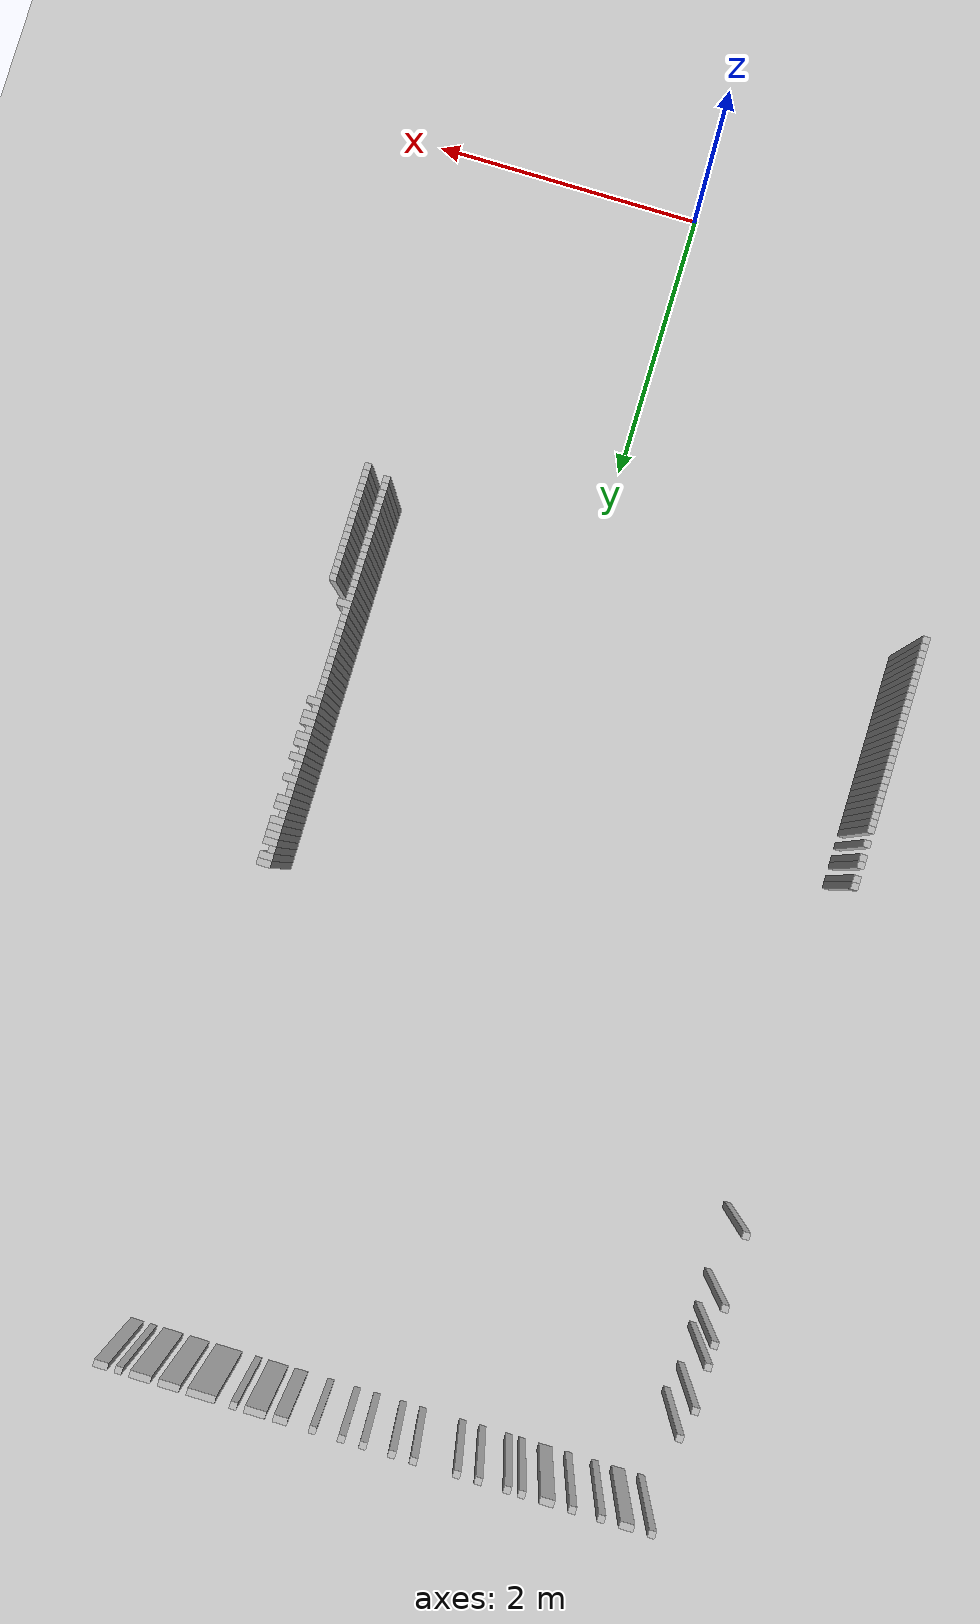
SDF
<sdf version="1.6">
 <world name="udh1_world">
  <include><uri>model://ground_plane</uri></include>
  <include><uri>model://sun</uri></include>
  <model name="wall_10">
   <static>true</static>
   <pose>-2.244999999999999 9.020000000000001 0.5 0 0 0</pose>
   <link name="link">
    <collision name="col"><geometry><box><size>0.05 0.05 1</size></box></geometry></collision>
    <visual name="vis"><geometry><box><size>0.05 0.05 1</size></box></geometry></visual>
   </link>
  </model>
  <model name="wall_11">
   <static>true</static>
   <pose>-2.0699999999999994 9.020000000000001 0.5 0 0 0</pose>
   <link name="link">
    <collision name="col"><geometry><box><size>0.1 0.05 1</size></box></geometry></collision>
    <visual name="vis"><geometry><box><size>0.1 0.05 1</size></box></geometry></visual>
   </link>
  </model>
  <model name="wall_12">
   <static>true</static>
   <pose>-1.8949999999999996 9.020000000000001 0.5 0 0 0</pose>
   <link name="link">
    <collision name="col"><geometry><box><size>0.05 0.05 1</size></box></geometry></collision>
    <visual name="vis"><geometry><box><size>0.05 0.05 1</size></box></geometry></visual>
   </link>
  </model>
  <model name="wall_13">
   <static>true</static>
   <pose>-1.6949999999999994 9.020000000000001 0.5 0 0 0</pose>
   <link name="link">
    <collision name="col"><geometry><box><size>0.05 0.05 1</size></box></geometry></collision>
    <visual name="vis"><geometry><box><size>0.05 0.05 1</size></box></geometry></visual>
   </link>
  </model>
  <model name="wall_14">
   <static>true</static>
   <pose>-1.5199999999999996 9.020000000000001 0.5 0 0 0</pose>
   <link name="link">
    <collision name="col"><geometry><box><size>0.1 0.05 1</size></box></geometry></collision>
    <visual name="vis"><geometry><box><size>0.1 0.05 1</size></box></geometry></visual>
   </link>
  </model>
  <model name="wall_15">
   <static>true</static>
   <pose>-1.3449999999999989 9.020000000000001 0.5 0 0 0</pose>
   <link name="link">
    <collision name="col"><geometry><box><size>0.05 0.05 1</size></box></geometry></collision>
    <visual name="vis"><geometry><box><size>0.05 0.05 1</size></box></geometry></visual>
   </link>
  </model>
  <model name="wall_16">
   <static>true</static>
   <pose>-1.2449999999999992 9.020000000000001 0.5 0 0 0</pose>
   <link name="link">
    <collision name="col"><geometry><box><size>0.05 0.05 1</size></box></geometry></collision>
    <visual name="vis"><geometry><box><size>0.05 0.05 1</size></box></geometry></visual>
   </link>
  </model>
  <model name="wall_17">
   <static>true</static>
   <pose>-1.044999999999999 9.020000000000001 0.5 0 0 0</pose>
   <link name="link">
    <collision name="col"><geometry><box><size>0.05 0.05 1</size></box></geometry></collision>
    <visual name="vis"><geometry><box><size>0.05 0.05 1</size></box></geometry></visual>
   </link>
  </model>
  <model name="wall_18">
   <static>true</static>
   <pose>-0.8949999999999996 9.020000000000001 0.5 0 0 0</pose>
   <link name="link">
    <collision name="col"><geometry><box><size>0.05 0.05 1</size></box></geometry></collision>
    <visual name="vis"><geometry><box><size>0.05 0.05 1</size></box></geometry></visual>
   </link>
  </model>
  <model name="wall_19">
   <static>true</static>
   <pose>-0.5949999999999989 9.020000000000001 0.5 0 0 0</pose>
   <link name="link">
    <collision name="col"><geometry><box><size>0.05 0.05 1</size></box></geometry></collision>
    <visual name="vis"><geometry><box><size>0.05 0.05 1</size></box></geometry></visual>
   </link>
  </model>
  <model name="wall_20">
   <static>true</static>
   <pose>-0.4449999999999985 9.020000000000001 0.5 0 0 0</pose>
   <link name="link">
    <collision name="col"><geometry><box><size>0.05 0.05 1</size></box></geometry></collision>
    <visual name="vis"><geometry><box><size>0.05 0.05 1</size></box></geometry></visual>
   </link>
  </model>
  <model name="wall_21">
   <static>true</static>
   <pose>-0.24499999999999922 9.020000000000001 0.5 0 0 0</pose>
   <link name="link">
    <collision name="col"><geometry><box><size>0.05 0.05 1</size></box></geometry></collision>
    <visual name="vis"><geometry><box><size>0.05 0.05 1</size></box></geometry></visual>
   </link>
  </model>
  <model name="wall_22">
   <static>true</static>
   <pose>-0.09499999999999886 9.020000000000001 0.5 0 0 0</pose>
   <link name="link">
    <collision name="col"><geometry><box><size>0.05 0.05 1</size></box></geometry></collision>
    <visual name="vis"><geometry><box><size>0.05 0.05 1</size></box></geometry></visual>
   </link>
  </model>
  <model name="wall_23">
   <static>true</static>
   <pose>0.10500000000000043 9.020000000000001 0.5 0 0 0</pose>
   <link name="link">
    <collision name="col"><geometry><box><size>0.05 0.05 1</size></box></geometry></collision>
    <visual name="vis"><geometry><box><size>0.05 0.05 1</size></box></geometry></visual>
   </link>
  </model>
  <model name="wall_24">
   <static>true</static>
   <pose>0.33000000000000007 9.020000000000001 0.5 0 0 0</pose>
   <link name="link">
    <collision name="col"><geometry><box><size>0.1 0.05 1</size></box></geometry></collision>
    <visual name="vis"><geometry><box><size>0.1 0.05 1</size></box></geometry></visual>
   </link>
  </model>
  <model name="wall_25">
   <static>true</static>
   <pose>0.5050000000000008 9.020000000000001 0.5 0 0 0</pose>
   <link name="link">
    <collision name="col"><geometry><box><size>0.15000000000000002 0.05 1</size></box></geometry></collision>
    <visual name="vis"><geometry><box><size>0.15000000000000002 0.05 1</size></box></geometry></visual>
   </link>
  </model>
  <model name="wall_26">
   <static>true</static>
   <pose>0.6550000000000011 9.020000000000001 0.5 0 0 0</pose>
   <link name="link">
    <collision name="col"><geometry><box><size>0.05 0.05 1</size></box></geometry></collision>
    <visual name="vis"><geometry><box><size>0.05 0.05 1</size></box></geometry></visual>
   </link>
  </model>
  <model name="wall_27">
   <static>true</static>
   <pose>0.8800000000000008 9.020000000000001 0.5 0 0 0</pose>
   <link name="link">
    <collision name="col"><geometry><box><size>0.2 0.05 1</size></box></geometry></collision>
    <visual name="vis"><geometry><box><size>0.2 0.05 1</size></box></geometry></visual>
   </link>
  </model>
  <model name="wall_28">
   <static>true</static>
   <pose>1.1050000000000004 9.020000000000001 0.5 0 0 0</pose>
   <link name="link">
    <collision name="col"><geometry><box><size>0.15000000000000002 0.05 1</size></box></geometry></collision>
    <visual name="vis"><geometry><box><size>0.15000000000000002 0.05 1</size></box></geometry></visual>
   </link>
  </model>
  <model name="wall_29">
   <static>true</static>
   <pose>1.3050000000000015 9.020000000000001 0.5 0 0 0</pose>
   <link name="link">
    <collision name="col"><geometry><box><size>0.15000000000000002 0.05 1</size></box></geometry></collision>
    <visual name="vis"><geometry><box><size>0.15000000000000002 0.05 1</size></box></geometry></visual>
   </link>
  </model>
  <model name="wall_30">
   <static>true</static>
   <pose>1.4550000000000018 9.020000000000001 0.5 0 0 0</pose>
   <link name="link">
    <collision name="col"><geometry><box><size>0.05 0.05 1</size></box></geometry></collision>
    <visual name="vis"><geometry><box><size>0.05 0.05 1</size></box></geometry></visual>
   </link>
  </model>
  <model name="wall_31">
   <static>true</static>
   <pose>1.5800000000000018 9.020000000000001 0.5 0 0 0</pose>
   <link name="link">
    <collision name="col"><geometry><box><size>0.1 0.05 1</size></box></geometry></collision>
    <visual name="vis"><geometry><box><size>0.1 0.05 1</size></box></geometry></visual>
   </link>
  </model>
  <model name="wall_93">
   <static>true</static>
   <pose>-2.244999999999999 8.37 0.5 0 0 0</pose>
   <link name="link">
    <collision name="col"><geometry><box><size>0.05 0.05 1</size></box></geometry></collision>
    <visual name="vis"><geometry><box><size>0.05 0.05 1</size></box></geometry></visual>
   </link>
  </model>
  <model name="wall_110">
   <static>true</static>
   <pose>-2.294999999999999 8.17 0.5 0 0 0</pose>
   <link name="link">
    <collision name="col"><geometry><box><size>0.05 0.05 1</size></box></geometry></collision>
    <visual name="vis"><geometry><box><size>0.05 0.05 1</size></box></geometry></visual>
   </link>
  </model>
  <model name="wall_135">
   <static>true</static>
   <pose>-2.294999999999999 7.869999999999999 0.5 0 0 0</pose>
   <link name="link">
    <collision name="col"><geometry><box><size>0.05 0.05 1</size></box></geometry></collision>
    <visual name="vis"><geometry><box><size>0.05 0.05 1</size></box></geometry></visual>
   </link>
  </model>
  <model name="wall_148">
   <static>true</static>
   <pose>-2.294999999999999 7.720000000000001 0.5 0 0 0</pose>
   <link name="link">
    <collision name="col"><geometry><box><size>0.05 0.05 1</size></box></geometry></collision>
    <visual name="vis"><geometry><box><size>0.05 0.05 1</size></box></geometry></visual>
   </link>
  </model>
  <model name="wall_169">
   <static>true</static>
   <pose>-2.294999999999999 7.470000000000001 0.5 0 0 0</pose>
   <link name="link">
    <collision name="col"><geometry><box><size>0.05 0.05 1</size></box></geometry></collision>
    <visual name="vis"><geometry><box><size>0.05 0.05 1</size></box></geometry></visual>
   </link>
  </model>
  <model name="wall_220">
   <static>true</static>
   <pose>-2.294999999999999 6.970000000000001 0.5 0 0 0</pose>
   <link name="link">
    <collision name="col"><geometry><box><size>0.05 0.05 1</size></box></geometry></collision>
    <visual name="vis"><geometry><box><size>0.05 0.05 1</size></box></geometry></visual>
   </link>
  </model>
  <model name="wall_425">
   <static>true</static>
   <pose>1.5300000000000011 5.52 0.5 0 0 0</pose>
   <link name="link">
    <collision name="col"><geometry><box><size>0.1 0.05 1</size></box></geometry></collision>
    <visual name="vis"><geometry><box><size>0.1 0.05 1</size></box></geometry></visual>
   </link>
  </model>
  <model name="wall_434">
   <static>true</static>
   <pose>1.5300000000000011 5.470000000000001 0.5 0 0 0</pose>
   <link name="link">
    <collision name="col"><geometry><box><size>0.1 0.05 1</size></box></geometry></collision>
    <visual name="vis"><geometry><box><size>0.1 0.05 1</size></box></geometry></visual>
   </link>
  </model>
  <model name="wall_443">
   <static>true</static>
   <pose>1.5050000000000008 5.42 0.5 0 0 0</pose>
   <link name="link">
    <collision name="col"><geometry><box><size>0.05 0.05 1</size></box></geometry></collision>
    <visual name="vis"><geometry><box><size>0.05 0.05 1</size></box></geometry></visual>
   </link>
  </model>
  <model name="wall_452">
   <static>true</static>
   <pose>1.5300000000000011 5.369999999999999 0.5 0 0 0</pose>
   <link name="link">
    <collision name="col"><geometry><box><size>0.1 0.05 1</size></box></geometry></collision>
    <visual name="vis"><geometry><box><size>0.1 0.05 1</size></box></geometry></visual>
   </link>
  </model>
  <model name="wall_461">
   <static>true</static>
   <pose>1.5300000000000011 5.32 0.5 0 0 0</pose>
   <link name="link">
    <collision name="col"><geometry><box><size>0.1 0.05 1</size></box></geometry></collision>
    <visual name="vis"><geometry><box><size>0.1 0.05 1</size></box></geometry></visual>
   </link>
  </model>
  <model name="wall_470">
   <static>true</static>
   <pose>1.5300000000000011 5.27 0.5 0 0 0</pose>
   <link name="link">
    <collision name="col"><geometry><box><size>0.1 0.05 1</size></box></geometry></collision>
    <visual name="vis"><geometry><box><size>0.1 0.05 1</size></box></geometry></visual>
   </link>
  </model>
  <model name="wall_479">
   <static>true</static>
   <pose>1.5300000000000011 5.220000000000001 0.5 0 0 0</pose>
   <link name="link">
    <collision name="col"><geometry><box><size>0.1 0.05 1</size></box></geometry></collision>
    <visual name="vis"><geometry><box><size>0.1 0.05 1</size></box></geometry></visual>
   </link>
  </model>
  <model name="wall_488">
   <static>true</static>
   <pose>1.5050000000000008 5.17 0.5 0 0 0</pose>
   <link name="link">
    <collision name="col"><geometry><box><size>0.05 0.05 1</size></box></geometry></collision>
    <visual name="vis"><geometry><box><size>0.05 0.05 1</size></box></geometry></visual>
   </link>
  </model>
  <model name="wall_497">
   <static>true</static>
   <pose>1.5300000000000011 5.119999999999999 0.5 0 0 0</pose>
   <link name="link">
    <collision name="col"><geometry><box><size>0.1 0.05 1</size></box></geometry></collision>
    <visual name="vis"><geometry><box><size>0.1 0.05 1</size></box></geometry></visual>
   </link>
  </model>
  <model name="wall_506">
   <static>true</static>
   <pose>1.5300000000000011 5.07 0.5 0 0 0</pose>
   <link name="link">
    <collision name="col"><geometry><box><size>0.1 0.05 1</size></box></geometry></collision>
    <visual name="vis"><geometry><box><size>0.1 0.05 1</size></box></geometry></visual>
   </link>
  </model>
  <model name="wall_515">
   <static>true</static>
   <pose>1.5050000000000008 5.02 0.5 0 0 0</pose>
   <link name="link">
    <collision name="col"><geometry><box><size>0.05 0.05 1</size></box></geometry></collision>
    <visual name="vis"><geometry><box><size>0.05 0.05 1</size></box></geometry></visual>
   </link>
  </model>
  <model name="wall_524">
   <static>true</static>
   <pose>1.5050000000000008 4.970000000000001 0.5 0 0 0</pose>
   <link name="link">
    <collision name="col"><geometry><box><size>0.05 0.05 1</size></box></geometry></collision>
    <visual name="vis"><geometry><box><size>0.05 0.05 1</size></box></geometry></visual>
   </link>
  </model>
  <model name="wall_533">
   <static>true</static>
   <pose>1.5300000000000011 4.92 0.5 0 0 0</pose>
   <link name="link">
    <collision name="col"><geometry><box><size>0.1 0.05 1</size></box></geometry></collision>
    <visual name="vis"><geometry><box><size>0.1 0.05 1</size></box></geometry></visual>
   </link>
  </model>
  <model name="wall_542">
   <static>true</static>
   <pose>1.5050000000000008 4.869999999999999 0.5 0 0 0</pose>
   <link name="link">
    <collision name="col"><geometry><box><size>0.05 0.05 1</size></box></geometry></collision>
    <visual name="vis"><geometry><box><size>0.05 0.05 1</size></box></geometry></visual>
   </link>
  </model>
  <model name="wall_551">
   <static>true</static>
   <pose>1.5050000000000008 4.82 0.5 0 0 0</pose>
   <link name="link">
    <collision name="col"><geometry><box><size>0.05 0.05 1</size></box></geometry></collision>
    <visual name="vis"><geometry><box><size>0.05 0.05 1</size></box></geometry></visual>
   </link>
  </model>
  <model name="wall_559">
   <static>true</static>
   <pose>1.5300000000000011 4.77 0.5 0 0 0</pose>
   <link name="link">
    <collision name="col"><geometry><box><size>0.1 0.05 1</size></box></geometry></collision>
    <visual name="vis"><geometry><box><size>0.1 0.05 1</size></box></geometry></visual>
   </link>
  </model>
  <model name="wall_568">
   <static>true</static>
   <pose>1.5050000000000008 4.720000000000001 0.5 0 0 0</pose>
   <link name="link">
    <collision name="col"><geometry><box><size>0.05 0.05 1</size></box></geometry></collision>
    <visual name="vis"><geometry><box><size>0.05 0.05 1</size></box></geometry></visual>
   </link>
  </model>
  <model name="wall_578">
   <static>true</static>
   <pose>1.5300000000000011 4.67 0.5 0 0 0</pose>
   <link name="link">
    <collision name="col"><geometry><box><size>0.1 0.05 1</size></box></geometry></collision>
    <visual name="vis"><geometry><box><size>0.1 0.05 1</size></box></geometry></visual>
   </link>
  </model>
  <model name="wall_591">
   <static>true</static>
   <pose>1.5300000000000011 4.619999999999999 0.5 0 0 0</pose>
   <link name="link">
    <collision name="col"><geometry><box><size>0.1 0.05 1</size></box></geometry></collision>
    <visual name="vis"><geometry><box><size>0.1 0.05 1</size></box></geometry></visual>
   </link>
  </model>
  <model name="wall_602">
   <static>true</static>
   <pose>1.5050000000000008 4.57 0.5 0 0 0</pose>
   <link name="link">
    <collision name="col"><geometry><box><size>0.05 0.05 1</size></box></geometry></collision>
    <visual name="vis"><geometry><box><size>0.05 0.05 1</size></box></geometry></visual>
   </link>
  </model>
  <model name="wall_615">
   <static>true</static>
   <pose>-2.344999999999999 4.52 0.5 0 0 0</pose>
   <link name="link">
    <collision name="col"><geometry><box><size>0.05 0.05 1</size></box></geometry></collision>
    <visual name="vis"><geometry><box><size>0.05 0.05 1</size></box></geometry></visual>
   </link>
  </model>
  <model name="wall_616">
   <static>true</static>
   <pose>1.5300000000000011 4.52 0.5 0 0 0</pose>
   <link name="link">
    <collision name="col"><geometry><box><size>0.1 0.05 1</size></box></geometry></collision>
    <visual name="vis"><geometry><box><size>0.1 0.05 1</size></box></geometry></visual>
   </link>
  </model>
  <model name="wall_625">
   <static>true</static>
   <pose>-2.344999999999999 4.470000000000001 0.5 0 0 0</pose>
   <link name="link">
    <collision name="col"><geometry><box><size>0.05 0.05 1</size></box></geometry></collision>
    <visual name="vis"><geometry><box><size>0.05 0.05 1</size></box></geometry></visual>
   </link>
  </model>
  <model name="wall_626">
   <static>true</static>
   <pose>1.5300000000000011 4.470000000000001 0.5 0 0 0</pose>
   <link name="link">
    <collision name="col"><geometry><box><size>0.1 0.05 1</size></box></geometry></collision>
    <visual name="vis"><geometry><box><size>0.1 0.05 1</size></box></geometry></visual>
   </link>
  </model>
  <model name="wall_635">
   <static>true</static>
   <pose>1.5050000000000008 4.42 0.5 0 0 0</pose>
   <link name="link">
    <collision name="col"><geometry><box><size>0.05 0.05 1</size></box></geometry></collision>
    <visual name="vis"><geometry><box><size>0.05 0.05 1</size></box></geometry></visual>
   </link>
  </model>
  <model name="wall_644">
   <static>true</static>
   <pose>-2.344999999999999 4.369999999999999 0.5 0 0 0</pose>
   <link name="link">
    <collision name="col"><geometry><box><size>0.05 0.05 1</size></box></geometry></collision>
    <visual name="vis"><geometry><box><size>0.05 0.05 1</size></box></geometry></visual>
   </link>
  </model>
  <model name="wall_645">
   <static>true</static>
   <pose>1.5300000000000011 4.369999999999999 0.5 0 0 0</pose>
   <link name="link">
    <collision name="col"><geometry><box><size>0.1 0.05 1</size></box></geometry></collision>
    <visual name="vis"><geometry><box><size>0.1 0.05 1</size></box></geometry></visual>
   </link>
  </model>
  <model name="wall_654">
   <static>true</static>
   <pose>-2.344999999999999 4.32 0.5 0 0 0</pose>
   <link name="link">
    <collision name="col"><geometry><box><size>0.05 0.05 1</size></box></geometry></collision>
    <visual name="vis"><geometry><box><size>0.05 0.05 1</size></box></geometry></visual>
   </link>
  </model>
  <model name="wall_655">
   <static>true</static>
   <pose>1.5050000000000008 4.32 0.5 0 0 0</pose>
   <link name="link">
    <collision name="col"><geometry><box><size>0.05 0.05 1</size></box></geometry></collision>
    <visual name="vis"><geometry><box><size>0.05 0.05 1</size></box></geometry></visual>
   </link>
  </model>
  <model name="wall_664">
   <static>true</static>
   <pose>1.5050000000000008 4.27 0.5 0 0 0</pose>
   <link name="link">
    <collision name="col"><geometry><box><size>0.05 0.05 1</size></box></geometry></collision>
    <visual name="vis"><geometry><box><size>0.05 0.05 1</size></box></geometry></visual>
   </link>
  </model>
  <model name="wall_673">
   <static>true</static>
   <pose>-2.344999999999999 4.220000000000001 0.5 0 0 0</pose>
   <link name="link">
    <collision name="col"><geometry><box><size>0.05 0.05 1</size></box></geometry></collision>
    <visual name="vis"><geometry><box><size>0.05 0.05 1</size></box></geometry></visual>
   </link>
  </model>
  <model name="wall_674">
   <static>true</static>
   <pose>1.5050000000000008 4.220000000000001 0.5 0 0 0</pose>
   <link name="link">
    <collision name="col"><geometry><box><size>0.05 0.05 1</size></box></geometry></collision>
    <visual name="vis"><geometry><box><size>0.05 0.05 1</size></box></geometry></visual>
   </link>
  </model>
  <model name="wall_683">
   <static>true</static>
   <pose>1.5050000000000008 4.17 0.5 0 0 0</pose>
   <link name="link">
    <collision name="col"><geometry><box><size>0.05 0.05 1</size></box></geometry></collision>
    <visual name="vis"><geometry><box><size>0.05 0.05 1</size></box></geometry></visual>
   </link>
  </model>
  <model name="wall_692">
   <static>true</static>
   <pose>-2.344999999999999 4.119999999999999 0.5 0 0 0</pose>
   <link name="link">
    <collision name="col"><geometry><box><size>0.05 0.05 1</size></box></geometry></collision>
    <visual name="vis"><geometry><box><size>0.05 0.05 1</size></box></geometry></visual>
   </link>
  </model>
  <model name="wall_693">
   <static>true</static>
   <pose>1.5050000000000008 4.119999999999999 0.5 0 0 0</pose>
   <link name="link">
    <collision name="col"><geometry><box><size>0.05 0.05 1</size></box></geometry></collision>
    <visual name="vis"><geometry><box><size>0.05 0.05 1</size></box></geometry></visual>
   </link>
  </model>
  <model name="wall_702">
   <static>true</static>
   <pose>-2.344999999999999 4.07 0.5 0 0 0</pose>
   <link name="link">
    <collision name="col"><geometry><box><size>0.05 0.05 1</size></box></geometry></collision>
    <visual name="vis"><geometry><box><size>0.05 0.05 1</size></box></geometry></visual>
   </link>
  </model>
  <model name="wall_703">
   <static>true</static>
   <pose>1.5050000000000008 4.07 0.5 0 0 0</pose>
   <link name="link">
    <collision name="col"><geometry><box><size>0.05 0.05 1</size></box></geometry></collision>
    <visual name="vis"><geometry><box><size>0.05 0.05 1</size></box></geometry></visual>
   </link>
  </model>
  <model name="wall_712">
   <static>true</static>
   <pose>-2.344999999999999 4.02 0.5 0 0 0</pose>
   <link name="link">
    <collision name="col"><geometry><box><size>0.05 0.05 1</size></box></geometry></collision>
    <visual name="vis"><geometry><box><size>0.05 0.05 1</size></box></geometry></visual>
   </link>
  </model>
  <model name="wall_713">
   <static>true</static>
   <pose>1.5050000000000008 4.02 0.5 0 0 0</pose>
   <link name="link">
    <collision name="col"><geometry><box><size>0.05 0.05 1</size></box></geometry></collision>
    <visual name="vis"><geometry><box><size>0.05 0.05 1</size></box></geometry></visual>
   </link>
  </model>
  <model name="wall_722">
   <static>true</static>
   <pose>-2.344999999999999 3.9700000000000006 0.5 0 0 0</pose>
   <link name="link">
    <collision name="col"><geometry><box><size>0.05 0.05 1</size></box></geometry></collision>
    <visual name="vis"><geometry><box><size>0.05 0.05 1</size></box></geometry></visual>
   </link>
  </model>
  <model name="wall_723">
   <static>true</static>
   <pose>1.5050000000000008 3.9700000000000006 0.5 0 0 0</pose>
   <link name="link">
    <collision name="col"><geometry><box><size>0.05 0.05 1</size></box></geometry></collision>
    <visual name="vis"><geometry><box><size>0.05 0.05 1</size></box></geometry></visual>
   </link>
  </model>
  <model name="wall_732">
   <static>true</static>
   <pose>-2.344999999999999 3.92 0.5 0 0 0</pose>
   <link name="link">
    <collision name="col"><geometry><box><size>0.05 0.05 1</size></box></geometry></collision>
    <visual name="vis"><geometry><box><size>0.05 0.05 1</size></box></geometry></visual>
   </link>
  </model>
  <model name="wall_733">
   <static>true</static>
   <pose>1.5050000000000008 3.92 0.5 0 0 0</pose>
   <link name="link">
    <collision name="col"><geometry><box><size>0.05 0.05 1</size></box></geometry></collision>
    <visual name="vis"><geometry><box><size>0.05 0.05 1</size></box></geometry></visual>
   </link>
  </model>
  <model name="wall_742">
   <static>true</static>
   <pose>-2.344999999999999 3.869999999999999 0.5 0 0 0</pose>
   <link name="link">
    <collision name="col"><geometry><box><size>0.05 0.05 1</size></box></geometry></collision>
    <visual name="vis"><geometry><box><size>0.05 0.05 1</size></box></geometry></visual>
   </link>
  </model>
  <model name="wall_743">
   <static>true</static>
   <pose>1.5050000000000008 3.869999999999999 0.5 0 0 0</pose>
   <link name="link">
    <collision name="col"><geometry><box><size>0.05 0.05 1</size></box></geometry></collision>
    <visual name="vis"><geometry><box><size>0.05 0.05 1</size></box></geometry></visual>
   </link>
  </model>
  <model name="wall_752">
   <static>true</static>
   <pose>-2.344999999999999 3.8200000000000003 0.5 0 0 0</pose>
   <link name="link">
    <collision name="col"><geometry><box><size>0.05 0.05 1</size></box></geometry></collision>
    <visual name="vis"><geometry><box><size>0.05 0.05 1</size></box></geometry></visual>
   </link>
  </model>
  <model name="wall_753">
   <static>true</static>
   <pose>1.5050000000000008 3.8200000000000003 0.5 0 0 0</pose>
   <link name="link">
    <collision name="col"><geometry><box><size>0.05 0.05 1</size></box></geometry></collision>
    <visual name="vis"><geometry><box><size>0.05 0.05 1</size></box></geometry></visual>
   </link>
  </model>
  <model name="wall_762">
   <static>true</static>
   <pose>-2.344999999999999 3.7699999999999996 0.5 0 0 0</pose>
   <link name="link">
    <collision name="col"><geometry><box><size>0.05 0.05 1</size></box></geometry></collision>
    <visual name="vis"><geometry><box><size>0.05 0.05 1</size></box></geometry></visual>
   </link>
  </model>
  <model name="wall_763">
   <static>true</static>
   <pose>1.5050000000000008 3.7699999999999996 0.5 0 0 0</pose>
   <link name="link">
    <collision name="col"><geometry><box><size>0.05 0.05 1</size></box></geometry></collision>
    <visual name="vis"><geometry><box><size>0.05 0.05 1</size></box></geometry></visual>
   </link>
  </model>
  <model name="wall_772">
   <static>true</static>
   <pose>-2.344999999999999 3.7200000000000006 0.5 0 0 0</pose>
   <link name="link">
    <collision name="col"><geometry><box><size>0.05 0.05 1</size></box></geometry></collision>
    <visual name="vis"><geometry><box><size>0.05 0.05 1</size></box></geometry></visual>
   </link>
  </model>
  <model name="wall_773">
   <static>true</static>
   <pose>1.5050000000000008 3.7200000000000006 0.5 0 0 0</pose>
   <link name="link">
    <collision name="col"><geometry><box><size>0.05 0.05 1</size></box></geometry></collision>
    <visual name="vis"><geometry><box><size>0.05 0.05 1</size></box></geometry></visual>
   </link>
  </model>
  <model name="wall_782">
   <static>true</static>
   <pose>-2.344999999999999 3.67 0.5 0 0 0</pose>
   <link name="link">
    <collision name="col"><geometry><box><size>0.05 0.05 1</size></box></geometry></collision>
    <visual name="vis"><geometry><box><size>0.05 0.05 1</size></box></geometry></visual>
   </link>
  </model>
  <model name="wall_783">
   <static>true</static>
   <pose>1.5300000000000011 3.67 0.5 0 0 0</pose>
   <link name="link">
    <collision name="col"><geometry><box><size>0.1 0.05 1</size></box></geometry></collision>
    <visual name="vis"><geometry><box><size>0.1 0.05 1</size></box></geometry></visual>
   </link>
  </model>
  <model name="wall_791">
   <static>true</static>
   <pose>-2.344999999999999 3.619999999999999 0.5 0 0 0</pose>
   <link name="link">
    <collision name="col"><geometry><box><size>0.05 0.05 1</size></box></geometry></collision>
    <visual name="vis"><geometry><box><size>0.05 0.05 1</size></box></geometry></visual>
   </link>
  </model>
  <model name="wall_792">
   <static>true</static>
   <pose>1.5050000000000008 3.619999999999999 0.5 0 0 0</pose>
   <link name="link">
    <collision name="col"><geometry><box><size>0.05 0.05 1</size></box></geometry></collision>
    <visual name="vis"><geometry><box><size>0.05 0.05 1</size></box></geometry></visual>
   </link>
  </model>
  <model name="wall_801">
   <static>true</static>
   <pose>-2.344999999999999 3.5700000000000003 0.5 0 0 0</pose>
   <link name="link">
    <collision name="col"><geometry><box><size>0.05 0.05 1</size></box></geometry></collision>
    <visual name="vis"><geometry><box><size>0.05 0.05 1</size></box></geometry></visual>
   </link>
  </model>
  <model name="wall_802">
   <static>true</static>
   <pose>1.5050000000000008 3.5700000000000003 0.5 0 0 0</pose>
   <link name="link">
    <collision name="col"><geometry><box><size>0.05 0.05 1</size></box></geometry></collision>
    <visual name="vis"><geometry><box><size>0.05 0.05 1</size></box></geometry></visual>
   </link>
  </model>
  <model name="wall_811">
   <static>true</static>
   <pose>-2.344999999999999 3.5199999999999996 0.5 0 0 0</pose>
   <link name="link">
    <collision name="col"><geometry><box><size>0.05 0.05 1</size></box></geometry></collision>
    <visual name="vis"><geometry><box><size>0.05 0.05 1</size></box></geometry></visual>
   </link>
  </model>
  <model name="wall_812">
   <static>true</static>
   <pose>1.5050000000000008 3.5199999999999996 0.5 0 0 0</pose>
   <link name="link">
    <collision name="col"><geometry><box><size>0.05 0.05 1</size></box></geometry></collision>
    <visual name="vis"><geometry><box><size>0.05 0.05 1</size></box></geometry></visual>
   </link>
  </model>
  <model name="wall_813">
   <static>true</static>
   <pose>1.6550000000000011 3.5199999999999996 0.5 0 0 0</pose>
   <link name="link">
    <collision name="col"><geometry><box><size>0.05 0.05 1</size></box></geometry></collision>
    <visual name="vis"><geometry><box><size>0.05 0.05 1</size></box></geometry></visual>
   </link>
  </model>
  <model name="wall_821">
   <static>true</static>
   <pose>-2.344999999999999 3.4700000000000006 0.5 0 0 0</pose>
   <link name="link">
    <collision name="col"><geometry><box><size>0.05 0.05 1</size></box></geometry></collision>
    <visual name="vis"><geometry><box><size>0.05 0.05 1</size></box></geometry></visual>
   </link>
  </model>
  <model name="wall_822">
   <static>true</static>
   <pose>1.5050000000000008 3.4700000000000006 0.5 0 0 0</pose>
   <link name="link">
    <collision name="col"><geometry><box><size>0.05 0.05 1</size></box></geometry></collision>
    <visual name="vis"><geometry><box><size>0.05 0.05 1</size></box></geometry></visual>
   </link>
  </model>
  <model name="wall_823">
   <static>true</static>
   <pose>1.6550000000000011 3.4700000000000006 0.5 0 0 0</pose>
   <link name="link">
    <collision name="col"><geometry><box><size>0.05 0.05 1</size></box></geometry></collision>
    <visual name="vis"><geometry><box><size>0.05 0.05 1</size></box></geometry></visual>
   </link>
  </model>
  <model name="wall_831">
   <static>true</static>
   <pose>-2.344999999999999 3.42 0.5 0 0 0</pose>
   <link name="link">
    <collision name="col"><geometry><box><size>0.05 0.05 1</size></box></geometry></collision>
    <visual name="vis"><geometry><box><size>0.05 0.05 1</size></box></geometry></visual>
   </link>
  </model>
  <model name="wall_832">
   <static>true</static>
   <pose>1.5050000000000008 3.42 0.5 0 0 0</pose>
   <link name="link">
    <collision name="col"><geometry><box><size>0.05 0.05 1</size></box></geometry></collision>
    <visual name="vis"><geometry><box><size>0.05 0.05 1</size></box></geometry></visual>
   </link>
  </model>
  <model name="wall_833">
   <static>true</static>
   <pose>1.6550000000000011 3.42 0.5 0 0 0</pose>
   <link name="link">
    <collision name="col"><geometry><box><size>0.05 0.05 1</size></box></geometry></collision>
    <visual name="vis"><geometry><box><size>0.05 0.05 1</size></box></geometry></visual>
   </link>
  </model>
  <model name="wall_841">
   <static>true</static>
   <pose>-2.344999999999999 3.369999999999999 0.5 0 0 0</pose>
   <link name="link">
    <collision name="col"><geometry><box><size>0.05 0.05 1</size></box></geometry></collision>
    <visual name="vis"><geometry><box><size>0.05 0.05 1</size></box></geometry></visual>
   </link>
  </model>
  <model name="wall_842">
   <static>true</static>
   <pose>1.5050000000000008 3.369999999999999 0.5 0 0 0</pose>
   <link name="link">
    <collision name="col"><geometry><box><size>0.05 0.05 1</size></box></geometry></collision>
    <visual name="vis"><geometry><box><size>0.05 0.05 1</size></box></geometry></visual>
   </link>
  </model>
  <model name="wall_843">
   <static>true</static>
   <pose>1.6550000000000011 3.369999999999999 0.5 0 0 0</pose>
   <link name="link">
    <collision name="col"><geometry><box><size>0.05 0.05 1</size></box></geometry></collision>
    <visual name="vis"><geometry><box><size>0.05 0.05 1</size></box></geometry></visual>
   </link>
  </model>
  <model name="wall_851">
   <static>true</static>
   <pose>-2.344999999999999 3.3200000000000003 0.5 0 0 0</pose>
   <link name="link">
    <collision name="col"><geometry><box><size>0.05 0.05 1</size></box></geometry></collision>
    <visual name="vis"><geometry><box><size>0.05 0.05 1</size></box></geometry></visual>
   </link>
  </model>
  <model name="wall_852">
   <static>true</static>
   <pose>1.5050000000000008 3.3200000000000003 0.5 0 0 0</pose>
   <link name="link">
    <collision name="col"><geometry><box><size>0.05 0.05 1</size></box></geometry></collision>
    <visual name="vis"><geometry><box><size>0.05 0.05 1</size></box></geometry></visual>
   </link>
  </model>
  <model name="wall_853">
   <static>true</static>
   <pose>1.6550000000000011 3.3200000000000003 0.5 0 0 0</pose>
   <link name="link">
    <collision name="col"><geometry><box><size>0.05 0.05 1</size></box></geometry></collision>
    <visual name="vis"><geometry><box><size>0.05 0.05 1</size></box></geometry></visual>
   </link>
  </model>
  <model name="wall_861">
   <static>true</static>
   <pose>-2.344999999999999 3.2699999999999996 0.5 0 0 0</pose>
   <link name="link">
    <collision name="col"><geometry><box><size>0.05 0.05 1</size></box></geometry></collision>
    <visual name="vis"><geometry><box><size>0.05 0.05 1</size></box></geometry></visual>
   </link>
  </model>
  <model name="wall_862">
   <static>true</static>
   <pose>1.5050000000000008 3.2699999999999996 0.5 0 0 0</pose>
   <link name="link">
    <collision name="col"><geometry><box><size>0.05 0.05 1</size></box></geometry></collision>
    <visual name="vis"><geometry><box><size>0.05 0.05 1</size></box></geometry></visual>
   </link>
  </model>
  <model name="wall_863">
   <static>true</static>
   <pose>1.6550000000000011 3.2699999999999996 0.5 0 0 0</pose>
   <link name="link">
    <collision name="col"><geometry><box><size>0.05 0.05 1</size></box></geometry></collision>
    <visual name="vis"><geometry><box><size>0.05 0.05 1</size></box></geometry></visual>
   </link>
  </model>
  <model name="wall_871">
   <static>true</static>
   <pose>-2.344999999999999 3.2200000000000006 0.5 0 0 0</pose>
   <link name="link">
    <collision name="col"><geometry><box><size>0.05 0.05 1</size></box></geometry></collision>
    <visual name="vis"><geometry><box><size>0.05 0.05 1</size></box></geometry></visual>
   </link>
  </model>
  <model name="wall_872">
   <static>true</static>
   <pose>1.5050000000000008 3.2200000000000006 0.5 0 0 0</pose>
   <link name="link">
    <collision name="col"><geometry><box><size>0.05 0.05 1</size></box></geometry></collision>
    <visual name="vis"><geometry><box><size>0.05 0.05 1</size></box></geometry></visual>
   </link>
  </model>
  <model name="wall_873">
   <static>true</static>
   <pose>1.6550000000000011 3.2200000000000006 0.5 0 0 0</pose>
   <link name="link">
    <collision name="col"><geometry><box><size>0.05 0.05 1</size></box></geometry></collision>
    <visual name="vis"><geometry><box><size>0.05 0.05 1</size></box></geometry></visual>
   </link>
  </model>
  <model name="wall_881">
   <static>true</static>
   <pose>-2.344999999999999 3.17 0.5 0 0 0</pose>
   <link name="link">
    <collision name="col"><geometry><box><size>0.05 0.05 1</size></box></geometry></collision>
    <visual name="vis"><geometry><box><size>0.05 0.05 1</size></box></geometry></visual>
   </link>
  </model>
  <model name="wall_882">
   <static>true</static>
   <pose>1.5050000000000008 3.17 0.5 0 0 0</pose>
   <link name="link">
    <collision name="col"><geometry><box><size>0.05 0.05 1</size></box></geometry></collision>
    <visual name="vis"><geometry><box><size>0.05 0.05 1</size></box></geometry></visual>
   </link>
  </model>
  <model name="wall_883">
   <static>true</static>
   <pose>1.6550000000000011 3.17 0.5 0 0 0</pose>
   <link name="link">
    <collision name="col"><geometry><box><size>0.05 0.05 1</size></box></geometry></collision>
    <visual name="vis"><geometry><box><size>0.05 0.05 1</size></box></geometry></visual>
   </link>
  </model>
  <model name="wall_891">
   <static>true</static>
   <pose>-2.344999999999999 3.119999999999999 0.5 0 0 0</pose>
   <link name="link">
    <collision name="col"><geometry><box><size>0.05 0.05 1</size></box></geometry></collision>
    <visual name="vis"><geometry><box><size>0.05 0.05 1</size></box></geometry></visual>
   </link>
  </model>
  <model name="wall_892">
   <static>true</static>
   <pose>1.5050000000000008 3.119999999999999 0.5 0 0 0</pose>
   <link name="link">
    <collision name="col"><geometry><box><size>0.05 0.05 1</size></box></geometry></collision>
    <visual name="vis"><geometry><box><size>0.05 0.05 1</size></box></geometry></visual>
   </link>
  </model>
  <model name="wall_893">
   <static>true</static>
   <pose>1.6550000000000011 3.119999999999999 0.5 0 0 0</pose>
   <link name="link">
    <collision name="col"><geometry><box><size>0.05 0.05 1</size></box></geometry></collision>
    <visual name="vis"><geometry><box><size>0.05 0.05 1</size></box></geometry></visual>
   </link>
  </model>
  <model name="wall_901">
   <static>true</static>
   <pose>-2.344999999999999 3.0700000000000003 0.5 0 0 0</pose>
   <link name="link">
    <collision name="col"><geometry><box><size>0.05 0.05 1</size></box></geometry></collision>
    <visual name="vis"><geometry><box><size>0.05 0.05 1</size></box></geometry></visual>
   </link>
  </model>
  <model name="wall_902">
   <static>true</static>
   <pose>1.5050000000000008 3.0700000000000003 0.5 0 0 0</pose>
   <link name="link">
    <collision name="col"><geometry><box><size>0.05 0.05 1</size></box></geometry></collision>
    <visual name="vis"><geometry><box><size>0.05 0.05 1</size></box></geometry></visual>
   </link>
  </model>
  <model name="wall_903">
   <static>true</static>
   <pose>1.6550000000000011 3.0700000000000003 0.5 0 0 0</pose>
   <link name="link">
    <collision name="col"><geometry><box><size>0.05 0.05 1</size></box></geometry></collision>
    <visual name="vis"><geometry><box><size>0.05 0.05 1</size></box></geometry></visual>
   </link>
  </model>
  <model name="wall_911">
   <static>true</static>
   <pose>-2.344999999999999 3.0199999999999996 0.5 0 0 0</pose>
   <link name="link">
    <collision name="col"><geometry><box><size>0.05 0.05 1</size></box></geometry></collision>
    <visual name="vis"><geometry><box><size>0.05 0.05 1</size></box></geometry></visual>
   </link>
  </model>
  <model name="wall_912">
   <static>true</static>
   <pose>1.5050000000000008 3.0199999999999996 0.5 0 0 0</pose>
   <link name="link">
    <collision name="col"><geometry><box><size>0.05 0.05 1</size></box></geometry></collision>
    <visual name="vis"><geometry><box><size>0.05 0.05 1</size></box></geometry></visual>
   </link>
  </model>
  <model name="wall_913">
   <static>true</static>
   <pose>1.6550000000000011 3.0199999999999996 0.5 0 0 0</pose>
   <link name="link">
    <collision name="col"><geometry><box><size>0.05 0.05 1</size></box></geometry></collision>
    <visual name="vis"><geometry><box><size>0.05 0.05 1</size></box></geometry></visual>
   </link>
  </model>
  <model name="wall_921">
   <static>true</static>
   <pose>-2.344999999999999 2.9700000000000006 0.5 0 0 0</pose>
   <link name="link">
    <collision name="col"><geometry><box><size>0.05 0.05 1</size></box></geometry></collision>
    <visual name="vis"><geometry><box><size>0.05 0.05 1</size></box></geometry></visual>
   </link>
  </model>
  <model name="wall_922">
   <static>true</static>
   <pose>1.5050000000000008 2.9700000000000006 0.5 0 0 0</pose>
   <link name="link">
    <collision name="col"><geometry><box><size>0.05 0.05 1</size></box></geometry></collision>
    <visual name="vis"><geometry><box><size>0.05 0.05 1</size></box></geometry></visual>
   </link>
  </model>
  <model name="wall_923">
   <static>true</static>
   <pose>1.6550000000000011 2.9700000000000006 0.5 0 0 0</pose>
   <link name="link">
    <collision name="col"><geometry><box><size>0.05 0.05 1</size></box></geometry></collision>
    <visual name="vis"><geometry><box><size>0.05 0.05 1</size></box></geometry></visual>
   </link>
  </model>
  <model name="wall_931">
   <static>true</static>
   <pose>-2.344999999999999 2.92 0.5 0 0 0</pose>
   <link name="link">
    <collision name="col"><geometry><box><size>0.05 0.05 1</size></box></geometry></collision>
    <visual name="vis"><geometry><box><size>0.05 0.05 1</size></box></geometry></visual>
   </link>
  </model>
  <model name="wall_932">
   <static>true</static>
   <pose>1.5050000000000008 2.92 0.5 0 0 0</pose>
   <link name="link">
    <collision name="col"><geometry><box><size>0.05 0.05 1</size></box></geometry></collision>
    <visual name="vis"><geometry><box><size>0.05 0.05 1</size></box></geometry></visual>
   </link>
  </model>
  <model name="wall_933">
   <static>true</static>
   <pose>1.6550000000000011 2.92 0.5 0 0 0</pose>
   <link name="link">
    <collision name="col"><geometry><box><size>0.05 0.05 1</size></box></geometry></collision>
    <visual name="vis"><geometry><box><size>0.05 0.05 1</size></box></geometry></visual>
   </link>
  </model>
  <model name="wall_941">
   <static>true</static>
   <pose>-2.344999999999999 2.869999999999999 0.5 0 0 0</pose>
   <link name="link">
    <collision name="col"><geometry><box><size>0.05 0.05 1</size></box></geometry></collision>
    <visual name="vis"><geometry><box><size>0.05 0.05 1</size></box></geometry></visual>
   </link>
  </model>
  <model name="wall_942">
   <static>true</static>
   <pose>1.5050000000000008 2.869999999999999 0.5 0 0 0</pose>
   <link name="link">
    <collision name="col"><geometry><box><size>0.05 0.05 1</size></box></geometry></collision>
    <visual name="vis"><geometry><box><size>0.05 0.05 1</size></box></geometry></visual>
   </link>
  </model>
  <model name="wall_943">
   <static>true</static>
   <pose>1.6550000000000011 2.869999999999999 0.5 0 0 0</pose>
   <link name="link">
    <collision name="col"><geometry><box><size>0.05 0.05 1</size></box></geometry></collision>
    <visual name="vis"><geometry><box><size>0.05 0.05 1</size></box></geometry></visual>
   </link>
  </model>
  <model name="wall_951">
   <static>true</static>
   <pose>-2.344999999999999 2.8200000000000003 0.5 0 0 0</pose>
   <link name="link">
    <collision name="col"><geometry><box><size>0.05 0.05 1</size></box></geometry></collision>
    <visual name="vis"><geometry><box><size>0.05 0.05 1</size></box></geometry></visual>
   </link>
  </model>
  <model name="wall_952">
   <static>true</static>
   <pose>1.5050000000000008 2.8200000000000003 0.5 0 0 0</pose>
   <link name="link">
    <collision name="col"><geometry><box><size>0.05 0.05 1</size></box></geometry></collision>
    <visual name="vis"><geometry><box><size>0.05 0.05 1</size></box></geometry></visual>
   </link>
  </model>
  <model name="wall_953">
   <static>true</static>
   <pose>1.6550000000000011 2.8200000000000003 0.5 0 0 0</pose>
   <link name="link">
    <collision name="col"><geometry><box><size>0.05 0.05 1</size></box></geometry></collision>
    <visual name="vis"><geometry><box><size>0.05 0.05 1</size></box></geometry></visual>
   </link>
  </model>
  <model name="wall_961">
   <static>true</static>
   <pose>-2.344999999999999 2.7699999999999996 0.5 0 0 0</pose>
   <link name="link">
    <collision name="col"><geometry><box><size>0.05 0.05 1</size></box></geometry></collision>
    <visual name="vis"><geometry><box><size>0.05 0.05 1</size></box></geometry></visual>
   </link>
  </model>
  <model name="wall_962">
   <static>true</static>
   <pose>1.5050000000000008 2.7699999999999996 0.5 0 0 0</pose>
   <link name="link">
    <collision name="col"><geometry><box><size>0.05 0.05 1</size></box></geometry></collision>
    <visual name="vis"><geometry><box><size>0.05 0.05 1</size></box></geometry></visual>
   </link>
  </model>
  <model name="wall_963">
   <static>true</static>
   <pose>1.6550000000000011 2.7699999999999996 0.5 0 0 0</pose>
   <link name="link">
    <collision name="col"><geometry><box><size>0.05 0.05 1</size></box></geometry></collision>
    <visual name="vis"><geometry><box><size>0.05 0.05 1</size></box></geometry></visual>
   </link>
  </model>
  <model name="wall_973">
   <static>true</static>
   <pose>1.6550000000000011 2.7200000000000006 0.5 0 0 0</pose>
   <link name="link">
    <collision name="col"><geometry><box><size>0.05 0.05 1</size></box></geometry></collision>
    <visual name="vis"><geometry><box><size>0.05 0.05 1</size></box></geometry></visual>
   </link>
  </model>
 </world>
</sdf>
